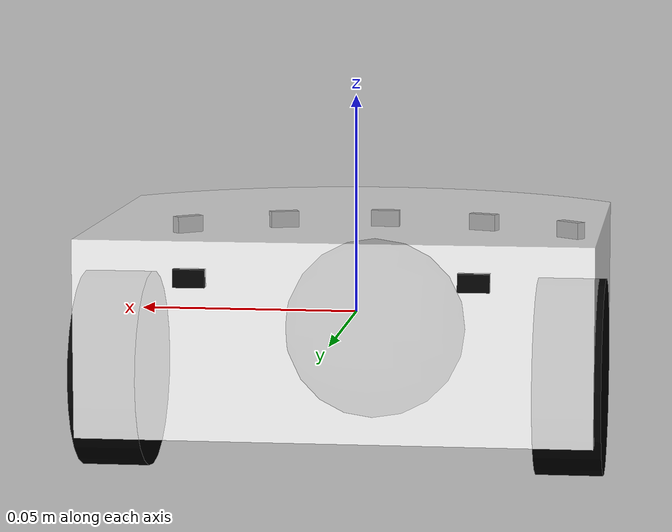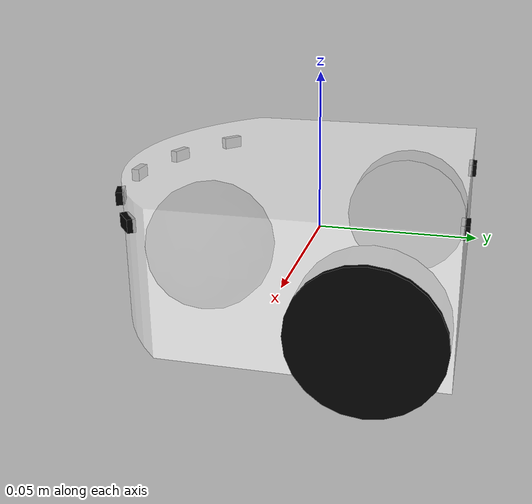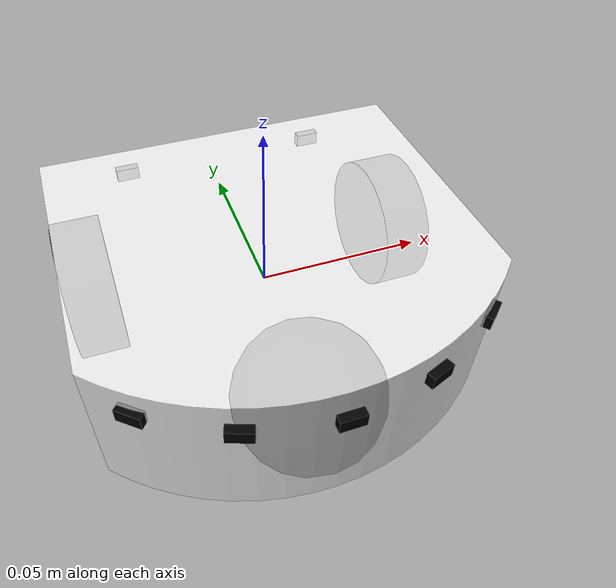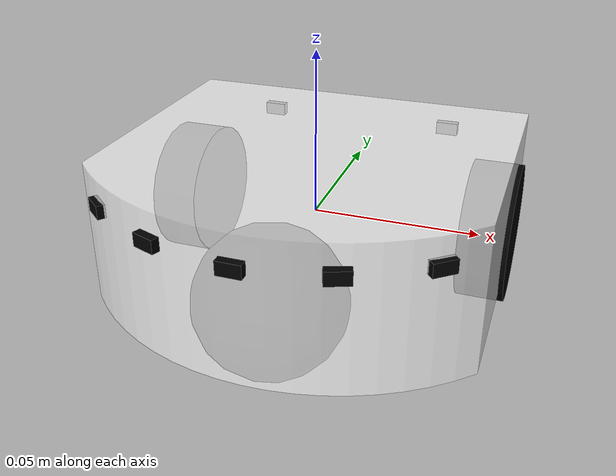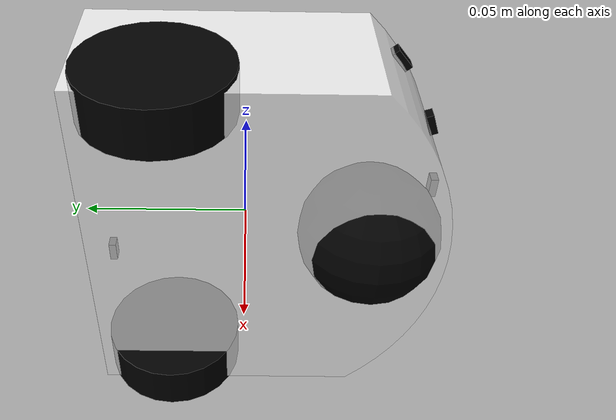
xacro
<?xml version="1.0"?>
<robot xmlns:xacro="https://www.ros.org/wiki/xacro" name="thymio">

    <xacro:include filename="$(find ros_basics_models)/urdf/utils/inertia.xacro" />
    <xacro:include filename="$(find ros_basics_models)/urdf/utils/materials.xacro" />
    <xacro:include filename="$(find ros_basics_models)/urdf/utils/custom_sensors.xacro" />
    <xacro:include filename="$(find ros_basics_exercise)/urdf/thymio_simple.gazebo" />

    <xacro:arg name="left_wheel_mu" default="100.0"/>
    <xacro:property name="left_wheel_mu_p" value="$(arg left_wheel_mu)"/>
    <xacro:arg name="right_wheel_mu" default="100.0"/>
    <xacro:property name="right_wheel_mu_p" value="$(arg right_wheel_mu)"/>
    <xacro:property name="wheel_radius" value="0.022"/>
    <xacro:property name="wheel_len" value="0.015"/>
    <xacro:arg name="mass" default="0.270"/>
    <xacro:property name="mass_p" value="$(arg mass)"/>
    <xacro:property name="body_mass" value="${mass_p * 0.70}"/>
    <xacro:property name="wheel_mass" value="${mass_p * 0.10}"/>

    <link name="base_link">
        <visual>
            <origin xyz="0 0.018 -0.022"/>
            <geometry>
                <mesh filename="package://ros_basics_exercise/urdf/Thymio.dae"/>
            </geometry>
            <material name="white"/>
        </visual>
        <collision>
            <origin xyz="0 0.018 -0.022"/>
            <geometry>
                <mesh filename="package://ros_basics_exercise/urdf/Thymio.dae"/>
            </geometry>
        </collision>
        <inertial>
            <mass value="${mass_p}"/>
            <xacro:box_inertia mass="${body_mass}" x="0.114" y="0.107" z="0.043" />
        </inertial>
    </link>
    <!-- Implement the caster wheel -->
    <link name="caster_wheel">
        <visual>
            <origin rpy="0 1.571 0"/>
            <geometry>
                <sphere radius="${wheel_radius}"/>
            </geometry>
            <material name="black"/>
        </visual>
        <collision>
            <origin rpy="0 1.5707 0"/>
            <geometry>
                <sphere radius="${wheel_radius}"/>
            </geometry>
            <surface>
                <friction>
                    <ode>
                        <mu>${left_wheel_mu_p}</mu>
                        <mu2>${right_wheel_mu_p}</mu2>
                        <slip1>1.0</slip1>
                        <slip2>1.0</slip2>
                    </ode>
                </friction>
            </surface>
        </collision>
        <inertial>
            <mass value="${wheel_mass}"/>
            <xacro:sphere_inertia mass="${wheel_mass}" r="${wheel_radius}"/>
        </inertial>
    </link>
   <!-- Implement the joint for the caster wheel -->
    <joint name="caster_wheel_joint" type="continuous">
        <parent link="base_link"/>
        <child link="caster_wheel"/>
        <axis xyz="1 0 0"/>
        <origin xyz="0 -0.038 -0.01"/>
    </joint>
    <!-- Implement the left wheel -->
    <link name="left_wheel">
        <visual>
            <origin rpy="0 1.571 0"/>
            <geometry>
                <cylinder length="${wheel_len}" radius="${wheel_radius}"/>
            </geometry>
            <material name="black"/>
        </visual>
        <collision>
            <origin rpy="0 1.5707 0"/>
            <geometry>
                <cylinder length="${wheel_len}" radius="${wheel_radius}"/>
            </geometry>
        </collision>
        <inertial>
            <mass value="${wheel_mass}"/>
            <xacro:cylinder_inertia mass="${wheel_mass}" h="${wheel_len}" r="${wheel_radius}"/>
        </inertial>
    </link>
    <!-- Implement the joint for the left wheel -->
    <joint name="left_wheel_joint" type="continuous">
        <parent link="base_link"/>
        <child link="left_wheel"/>
        <axis xyz="1 0 0"/>
        <origin xyz="0.051 0.024 -0.010"/>
        <!--joint_properties damping="1.0" friction="1.0"/-->
    </joint>
    <!-- Implement the right wheel -->
    <link name="right_wheel">
        <visual>
            <origin rpy="0 1.571 0"/>
            <geometry>
                <cylinder length="${wheel_len}" radius="${wheel_radius}"/>
            </geometry>
            <material name="black"/>
        </visual>
        <collision>
            <origin rpy="0 1.5707 0"/>
            <geometry>
                <cylinder length="${wheel_len}" radius="${wheel_radius}"/>
            </geometry>
        </collision>
        <inertial>
            <mass value="${wheel_mass}"/>
            <xacro:cylinder_inertia mass="${wheel_mass}" h="${wheel_len}" r="${wheel_radius}"/>
        </inertial>
    </link>
    <!-- Implement the joint for the right wheel -->
    <joint name="right_wheel_joint" type="continuous">
        <parent link="base_link"/>
        <child link="right_wheel"/>
        <axis xyz="1 0 0"/>
        <origin xyz="-0.051 0.024 -0.010"/>
        <!--joint_properties damping="1.0" friction="1.0"/-->
    </joint>
    <!-- Add your sensors using the macro -->
    <xacro:csensor plink="base_link" id="0" mass="0.001" originxyz="-0.003 0 0" originrpy="0 0 0" jointxyz="0.049 -0.047 0.014" jointrpy="0 0 -0.8708"/>
    <xacro:csensor plink="base_link" id="1" mass="0.001" originxyz="-0.003 0 0" originrpy="0 0 0" jointxyz="0.026 -0.060 0.014" jointrpy="0 0 -1.2208"/>
    <xacro:csensor plink="base_link" id="2" mass="0.001" originxyz="-0.003 0 0" originrpy="0 0 0" jointxyz="0 -0.065 0.014" jointrpy="0 0 -1.5708"/>
    <xacro:csensor plink="base_link" id="3" mass="0.001" originxyz="-0.003 0 0" originrpy="0 0 0" jointxyz="-0.026 -0.060 0.014" jointrpy="0 0 -1.9208"/>
    <xacro:csensor plink="base_link" id="4" mass="0.001" originxyz="-0.003 0 0" originrpy="0 0 0" jointxyz="-0.049 -0.047 0.014" jointrpy="0 0 -2.2708"/>
    <xacro:csensor plink="base_link" id="5" mass="0.001" originxyz="-0.003 0 0" originrpy="0 0 0" jointxyz="0.031 0.050 0.014" jointrpy="0 0 1.5708"/>
    <xacro:csensor plink="base_link" id="6" mass="0.001" originxyz="-0.003 0 0" originrpy="0 0 0" jointxyz="-0.031 0.050 0.014" jointrpy="0 0 1.5708"/>

</robot>

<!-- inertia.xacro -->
<robot xmlns:xacro="https://www.ros.org/wiki/xacro">

	<xacro:property name="mass" value="1"/>
	<xacro:property name="r" value="1"/>
	<xacro:property name="h" value="1"/>
	<xacro:property name="x" value="0"/>
	<xacro:property name="y" value="0"/>
	<xacro:property name="z" value="0"/>

	<xacro:macro name="cylinder_inertia" params="mass r h">
		<inertia ixx="${mass*(3*r*r+h*h)/12}" ixy="0" ixz="0" iyy="${mass*(3*r*r+h*h)/12}" iyz="0" izz="${mass*r*r/2}" />
	</xacro:macro>

	<xacro:macro name="box_inertia" params="mass x y z">
		<inertia ixx="${mass*(y*y+z*z)/12}" ixy="0" ixz="0" iyy="${mass*(x*x+z*z)/12}" iyz="0" izz="${mass*(x*x+z*z)/12}" />
	</xacro:macro>

	<xacro:macro name="sphere_inertia" params="mass r">
		<inertia ixx="${2*mass*r*r/5}" ixy="0" ixz="0" iyy="${2*mass*r*r/5}" iyz="0" izz="${2*mass*r*r/5}" />
	</xacro:macro>

</robot>

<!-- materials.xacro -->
<robot>
	<material name="white">
		<color rgba="1 1 1 0.8" />
	</material>
	<material name="black">
		<color rgba="0 0 0 1" />
	</material>
	<material name="blue">
		<color rgba="0 0 0.8 1" />
	</material>
	<material name="yellow">
		<color rgba="1 1 0 1" />
	</material>
	<material name="green">
		<color rgba="0 1 0 1" />
	</material>
	<material name="brown">
		<color rgba="${153/255} ${102/255} ${51/255} 0.5"/>
	</material>
</robot>

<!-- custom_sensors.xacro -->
<robot xmlns:xacro="https://www.ros.org/wiki/xacro">

    <xacro:property name="id" value="foo"/>
    <xacro:property name="plink" value="foo_parent"/>

    <xacro:property name="jointxyz" value="0 0 0"/>
    <xacro:property name="jointrpy" value="0 0 0"/>
    <xacro:property name="sensor_width" value="0.007" />
    <xacro:property name="sensor_length" value="0.0025" />
    <xacro:property name="sensor_height" value="0.004" />
    <xacro:property name="originrpy" value="0 0 0" />
    <xacro:property name="originxyz" value="0 0 0" />

    <xacro:macro name="csensor" params="plink id mass originrpy originxyz jointxyz jointrpy">
        <link name="sensor_${id}">
            <visual>
                <geometry>
                    <box size="${sensor_length} ${sensor_width} ${sensor_height}" />
                </geometry>
                <material name="black" />
                <origin rpy="${originrpy}" xyz="${originxyz}" />
            </visual>
            <collision>
                <geometry>
                    <box size="${sensor_length} ${sensor_width} ${sensor_height}" />
                </geometry>
                <origin rpy="${originrpy}" xyz="${originxyz}" />
            </collision>
            <inertial>
                <mass value="${mass}" />
                <origin rpy="${originrpy}" xyz="${originxyz}" />
                <xacro:box_inertia mass="${mass}" x="${sensor_width}" y="${sensor_length}" z="${sensor_height}" />
            </inertial>
        </link>
        <joint name="${plink}_sensor_${id}" type="fixed">
            <parent link="${plink}" />
            <child link="sensor_${id}" />
            <origin xyz="${jointxyz}" rpy="${jointrpy}" />
        </joint>
    </xacro:macro>

</robot>
